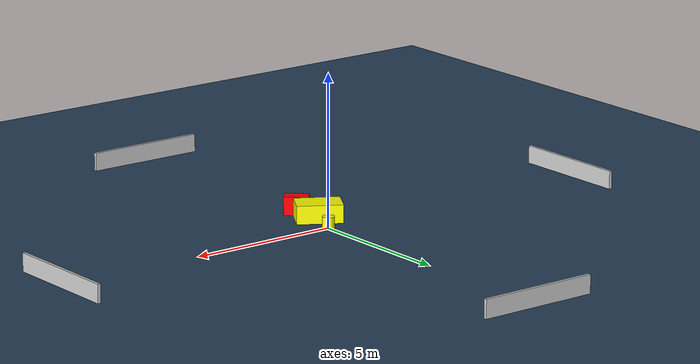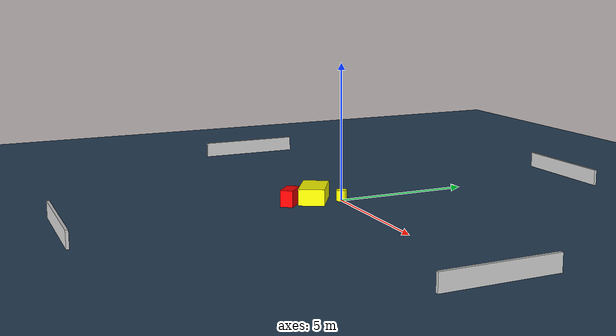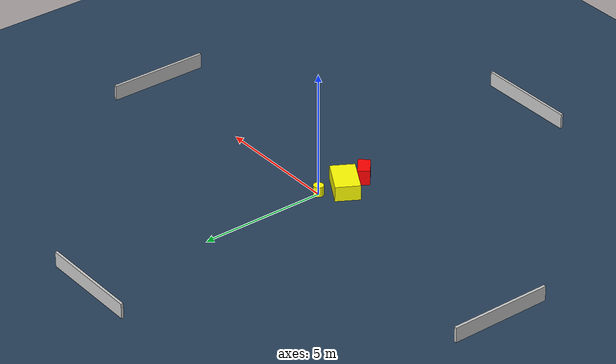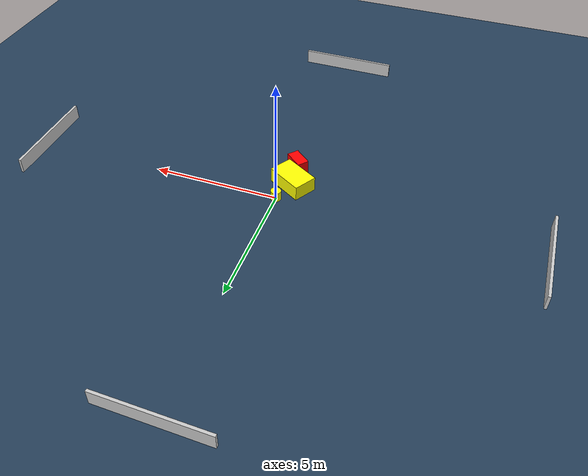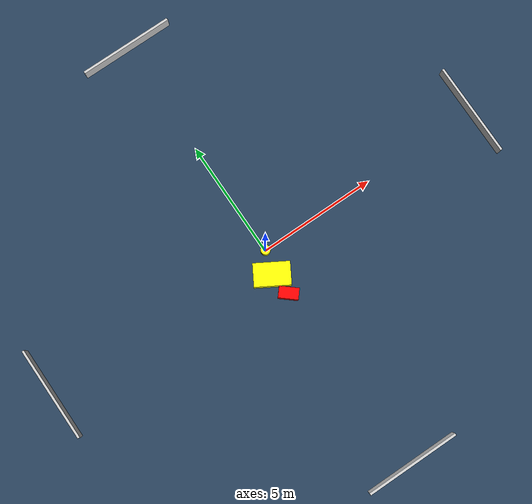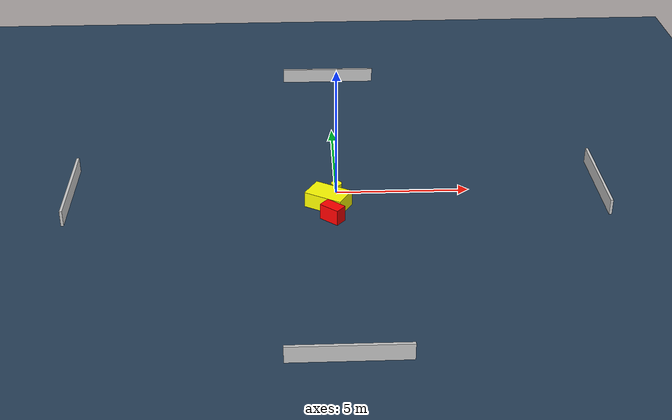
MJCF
<?xml version="1.0" ?>
<mujoco model="generated_environment">
  <option timestep="0.01" integrator="RK4" cone="elliptic"/>
  <default>
    <geom density="1"/>
  </default>
  <asset>
    <texture builtin="gradient" height="3072" name="skybox" rgb1="0.3 0.5 0.7" rgb2="0 0 0" type="skybox" width="512"/>
    <texture builtin="checker" height="300" name="groundplane" rgb1="0.2 0.3 0.4" rgb2="0.1 0.2 0.3" type="2d" width="300"/>
    <material name="groundplane" reflectance="0.2" texrepeat="5 5" texture="groundplane"/>
  </asset>
  <worldbody>
    <light dir="0 0 -1" directional="true" pos="0 0 1.5"/>
    <geom condim="3" friction="0.5 0.005 0.001" material="groundplane" name="floor" pos="0 0 0" size="0 0 0.05" type="plane"/>
    <body name="walls">
      <geom name="wall_1" condim="4" pos="-10.0 0.0 0.3" rgba="0.800000011920929 0.800000011920929 0.800000011920929 1.0" size="0.05 2.0 0.3" type="box"/>
      <geom name="wall_2" condim="4" pos="10.0 0.0 0.3" rgba="0.800000011920929 0.800000011920929 0.800000011920929 1.0" size="0.05 2.0 0.3" type="box"/>
      <geom name="wall_3" condim="4" pos="0.0 -10.0 0.3" rgba="0.800000011920929 0.800000011920929 0.800000011920929 1.0" size="2.0 0.05 0.3" type="box"/>
      <geom name="wall_4" condim="4" pos="0.0 10.0 0.3" rgba="0.800000011920929 0.800000011920929 0.800000011920929 1.0" size="2.0 0.05 0.3" type="box"/>
    </body>
    <body name="robot">
      <joint name="joint_x" type="slide" pos="0 0 0" axis="1 0 0"/>
      <joint name="joint_y" type="slide" pos="0 0 0" axis="0 1 0"/>
      <geom name="robot" type="cylinder" pos="0.0 0.0 0.2" size="0.2 0.2 0.0" mass="5.0" friction="1.0 0.005 0.0001" condim="4" rgba="1.0 1.0 0.0 1.0"/>
    </body>
    <body name="obstacle_1_movable">
      <geom name="obstacle_1_movable" condim="4" pos="-0.33978048463043836 -0.9569016762443777 0.3" euler="0 0 329.5534287709926" friction="0.0 0.005 0.001" rgba="1.0 1.0 0.0 1.0" size="0.7447109647494201 0.4746455639436658 0.3" type="box" mass="0.1"/>
      <joint type="free"/>
    </body>
    <body name="obstacle_2_static">
      <geom name="obstacle_2_static" condim="4" pos="-0.2151757749997277 -1.9331934228137522 0.3" euler="0 0 319.51921801274057" friction="0.0 0.005 0.001" rgba="1.0 0.0 0.0 1.0" size="0.40285698976222983 0.23440879493432665 0.3" type="box"/>
    </body>
  </worldbody>
  <actuator>
    <motor name="actuator_x" joint="joint_x" gear="1" ctrlrange="-1 1"/>
    <motor name="actuator_y" joint="joint_y" gear="1" ctrlrange="-1 1"/>
  </actuator>
</mujoco>
